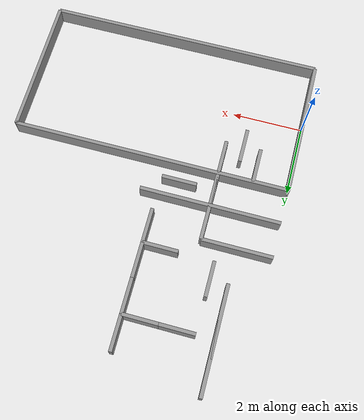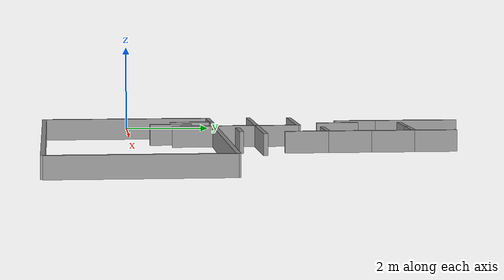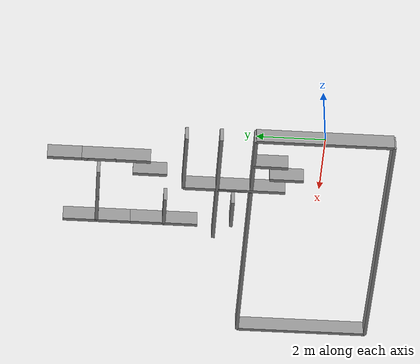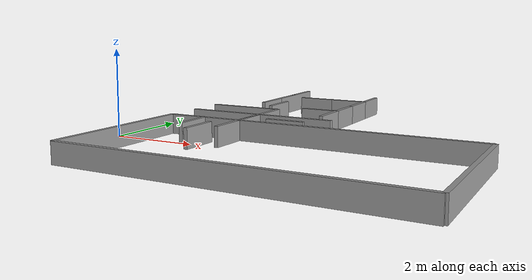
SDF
<?xml version='1.0'?>
<sdf version='1.7'>
  <model name='FirstWorld'>
    <pose>0 0 0 0 0 0</pose>
    <link name='LeftWall'>
      <collision name='LeftWall_Collision'>
        <geometry>
          <box>
            <size>4 0.1 0.5</size>
          </box>
        </geometry>
        <pose>0 0 0 0 -0 0</pose>
      </collision>
      <visual name='LeftWall_Visual'>
        <pose>0 0 0 0 -0 0</pose>
        <geometry>
          <box>
            <size>4 0.1 0.5</size>
          </box>
        </geometry>
        <material>
          <script>
            <uri>file://media/materials/scripts/gazebo.material</uri>
            <name>Gazebo/Grey</name>
          </script>
          <ambient>1 1 1 1</ambient>
        </material>
        <meta>
          <layer>0</layer>
        </meta>
      </visual>
      <pose>0 0 0 0 0 -1.5708</pose>
    </link>
    <link name='TopWall'>
      <collision name='TopWall_Collision'>
        <geometry>
          <box>
            <size>8 0.1 0.5</size>
          </box>
        </geometry>
        <pose>0 0 0 0 -0 0</pose>
      </collision>
      <visual name='TopWall_Visual'>
        <pose>0 0 0 0 -0 0</pose>
        <geometry>
          <box>
            <size>8 0.1 0.5</size>
          </box>
        </geometry>
        <material>
          <script>
            <uri>file://media/materials/scripts/gazebo.material</uri>
            <name>Gazebo/Grey</name>
          </script>
          <ambient>1 1 1 1</ambient>
        </material>
        <meta>
          <layer>0</layer>
        </meta>
      </visual>
      <pose>4 2 0 0 -0 0</pose>
    </link>
    <link name='RightWall'>
      <collision name='RightWall_Collision'>
        <geometry>
          <box>
            <size>4 0.1 0.5</size>
          </box>
        </geometry>
        <pose>0 0 0 0 -0 0</pose>
      </collision>
      <visual name='RightWall_Visual'>
        <pose>0 0 0 0 -0 0</pose>
        <geometry>
          <box>
            <size>4 0.1 0.5</size>
          </box>
        </geometry>
        <material>
          <script>
            <uri>file://media/materials/scripts/gazebo.material</uri>
            <name>Gazebo/Grey</name>
          </script>
          <ambient>1 1 1 1</ambient>
        </material>
        <meta>
          <layer>0</layer>
        </meta>
      </visual>
      <pose>8 0 0 0 -0 1.5708</pose>
    </link>
    <link name='BottomWall'>
      <collision name='BottomWall_Collision'>
        <geometry>
          <box>
            <size>8 0.1 0.5</size>
          </box>
        </geometry>
        <pose>0 0 0 0 -0 0</pose>
      </collision>
      <visual name='BottomWall_Visual'>
        <pose>0 0 0 0 -0 0</pose>
        <geometry>
          <box>
            <size>8 0.1 0.5</size>
          </box>
        </geometry>
        <material>
          <script>
            <uri>file://media/materials/scripts/gazebo.material</uri>
            <name>Gazebo/Grey</name>
          </script>
          <ambient>1 1 1 1</ambient>
        </material>
        <meta>
          <layer>0</layer>
        </meta>
      </visual>
      <pose> 4 -2 0 0 -0 0</pose>
    </link>
    <link name='Wall1'>
      <collision name='Wall1_Collision'>
        <geometry>
          <box>
            <size>1 0.1 0.5</size>
          </box>
        </geometry>
        <pose>0 0 0 0 -0 0</pose>
      </collision>
      <visual name='Wall1_Visual'>
        <pose>0 0 0 0 -0 0</pose>
        <geometry>
          <box>
            <size>1 0.1 0.5</size>
          </box>
        </geometry>
        <material>
          <script>
            <uri>file://media/materials/scripts/gazebo.material</uri>
            <name>Gazebo/Grey</name>
          </script>
          <ambient>1 1 1 1</ambient>
        </material>
        <meta>
          <layer>0</layer>
        </meta>
      </visual>
      <pose>3.5 4 0 0 -0 1.5708</pose>
    </link>
    <link name='Wall2'>
      <collision name='Wall2_Collision'>
        <geometry>
          <box>
            <size>1 0.1 0.5</size>
          </box>
        </geometry>
        <pose>0 0 0 0 -0 0</pose>
      </collision>
      <visual name='Wall2_Visual'>
        <pose>0 0 0 0 -0 0</pose>
        <geometry>
          <box>
            <size>1 0.1 0.5</size>
          </box>
        </geometry>
        <material>
          <script>
            <uri>file://media/materials/scripts/gazebo.material</uri>
            <name>Gazebo/Grey</name>
          </script>
          <ambient>1 1 1 1</ambient>
        </material>
        <meta>
          <layer>0</layer>
        </meta>
      </visual>
      <pose>3 4.5 0 0 -0 0</pose>
    </link>
    <link name='Wall3'>
      <collision name='Wall3_Collision'>
        <geometry>
          <box>
            <size>1 0.1 0.5</size>
          </box>
        </geometry>
        <pose>0 0 0 0 -0 0</pose>
      </collision>
      <visual name='Wall3_Visual'>
        <pose>0 0 0 0 -0 0</pose>
        <geometry>
          <box>
            <size>1 0.1 0.5</size>
          </box>
        </geometry>
        <material>
          <script>
            <uri>file://media/materials/scripts/gazebo.material</uri>
            <name>Gazebo/Grey</name>
          </script>
          <ambient>1 1 1 1</ambient>
        </material>
        <meta>
          <layer>0</layer>
        </meta>
      </visual>
      <pose>3.5 5 0 0 -0 1.5708</pose>
    </link>
    <link name='Wall4'>
      <collision name='Wall4_Collision'>
        <geometry>
          <box>
            <size>1 0.1 0.5</size>
          </box>
        </geometry>
        <pose>0 0 0 0 -0 0</pose>
      </collision>
      <visual name='Wall4_Visual'>
        <pose>0 0 0 0 -0 0</pose>
        <geometry>
          <box>
            <size>1 0.1 0.5</size>
          </box>
        </geometry>
        <material>
          <script>
            <uri>file://media/materials/scripts/gazebo.material</uri>
            <name>Gazebo/Grey</name>
          </script>
          <ambient>1 1 1 1</ambient>
        </material>
        <meta>
          <layer>0</layer>
        </meta>
      </visual>
      <pose>3.5 6 0 0 -0 1.5708</pose>
    </link>
    <link name='Wall5'>
      <collision name='Wall5_Collision'>
        <geometry>
          <box>
            <size>1 0.1 0.5</size>
          </box>
        </geometry>
        <pose>0 0 0 0 -0 0</pose>
      </collision>
      <visual name='Wall5_Visual'>
        <pose>0 0 0 0 -0 0</pose>
        <geometry>
          <box>
            <size>1 0.1 0.5</size>
          </box>
        </geometry>
        <material>
          <script>
            <uri>file://media/materials/scripts/gazebo.material</uri>
            <name>Gazebo/Grey</name>
          </script>
          <ambient>1 1 1 1</ambient>
        </material>
        <meta>
          <layer>0</layer>
        </meta>
      </visual>
      <pose>3 6.5 0 0 -0 0</pose>
    </link>
    <link name='Wall6'>
      <collision name='Wall6_Collision'>
        <geometry>
          <box>
            <size>1 0.1 0.5</size>
          </box>
        </geometry>
        <pose>0 0 0 0 -0 0</pose>
      </collision>
      <visual name='Wall6_Visual'>
        <pose>0 0 0 0 -0 0</pose>
        <geometry>
          <box>
            <size>1 0.1 0.5</size>
          </box>
        </geometry>
        <material>
          <script>
            <uri>file://media/materials/scripts/gazebo.material</uri>
            <name>Gazebo/Grey</name>
          </script>
          <ambient>1 1 1 1</ambient>
        </material>
        <meta>
          <layer>0</layer>
        </meta>
      </visual>
      <pose>3.5 7 0 0 -0 1.5708</pose>
    </link>
    <link name='Wall7'>
      <collision name='Wall7_Collision'>
        <geometry>
          <box>
            <size>1 0.1 0.5</size>
          </box>
        </geometry>
        <pose>0 0 0 0 -0 0</pose>
      </collision>
      <visual name='Wall7_Visual'>
        <pose>0 0 0 0 -0 0</pose>
        <geometry>
          <box>
            <size>1 0.1 0.5</size>
          </box>
        </geometry>
        <material>
          <script>
            <uri>file://media/materials/scripts/gazebo.material</uri>
            <name>Gazebo/Grey</name>
          </script>
          <ambient>1 1 1 1</ambient>
        </material>
        <meta>
          <layer>0</layer>
        </meta>
      </visual>
      <pose>1.5 1 0 0 -0 1.5708</pose>
    </link>
    <link name='Wall8'>
      <collision name='Wall8_Collision'>
        <geometry>
          <box>
            <size>4 0.1 0.5</size>
          </box>
        </geometry>
        <pose>0 0 0 0 -0 0</pose>
      </collision>
      <visual name='Wall8_Visual'>
        <pose>0 0 0 0 -0 0</pose>
        <geometry>
          <box>
            <size>4 0.1 0.5</size>
          </box>
        </geometry>
        <material>
          <script>
            <uri>file://media/materials/scripts/gazebo.material</uri>
            <name>Gazebo/Grey</name>
          </script>
          <ambient>1 1 1 1</ambient>
        </material>
        <meta>
          <layer>0</layer>
        </meta>
      </visual>
      <pose>2 3 0 0 -0 0</pose>
    </link>
    <link name='Wall9'>
      <collision name='Wall9_Collision'>
        <geometry>
          <box>
            <size>2 0.1 0.5</size>
          </box>
        </geometry>
        <pose>0 0 0 0 -0 0</pose>
      </collision>
      <visual name='Wall9_Visual'>
        <pose>0 0 0 0 -0 0</pose>
        <geometry>
          <box>
            <size>2 0.1 0.5</size>
          </box>
        </geometry>
        <material>
          <script>
            <uri>file://media/materials/scripts/gazebo.material</uri>
            <name>Gazebo/Grey</name>
          </script>
          <ambient>1 1 1 1</ambient>
        </material>
        <meta>
          <layer>0</layer>
        </meta>
      </visual>
      <pose>2 2 0 0 -0 1.5708</pose>
    </link>
    <link name='Wall10'>
      <collision name='Wall10_Collision'>
        <geometry>
          <box>
            <size>1 0.1 0.5</size>
          </box>
        </geometry>
        <pose>0 0 0 0 -0 0</pose>
      </collision>
      <visual name='Wall10_Visual'>
        <pose>0 0 0 0 -0 0</pose>
        <geometry>
          <box>
            <size>1 0.1 0.5</size>
          </box>
        </geometry>
        <material>
          <script>
            <uri>file://media/materials/scripts/gazebo.material</uri>
            <name>Gazebo/Grey</name>
          </script>
          <ambient>1 1 1 1</ambient>
        </material>
        <meta>
          <layer>0</layer>
        </meta>
      </visual>
      <pose>3 2.5 0 0 -0 0</pose>
    </link>
    <link name='Wall11'>
      <collision name='Wall11_Collision'>
        <geometry>
          <box>
            <size>2 0.1 0.5</size>
          </box>
        </geometry>
        <pose>0 0 0 0 -0 0</pose>
      </collision>
      <visual name='Wall11_Visual'>
        <pose>0 0 0 0 -0 0</pose>
        <geometry>
          <box>
            <size>2 0.1 0.5</size>
          </box>
        </geometry>
        <material>
          <script>
            <uri>file://media/materials/scripts/gazebo.material</uri>
            <name>Gazebo/Grey</name>
          </script>
          <ambient>1 1 1 1</ambient>
        </material>
        <meta>
          <layer>0</layer>
        </meta>
      </visual>
      <pose>2 3 0 0 -0 1.5708</pose>
    </link>
    <link name='Wall12'>
      <collision name='Wall12_Collision'>
        <geometry>
          <box>
            <size>1 0.1 0.5</size>
          </box>
        </geometry>
        <pose>0 0 0 0 -0 0</pose>
      </collision>
      <visual name='Wall12_Visual'>
        <pose>0 0 0 0 -0 0</pose>
        <geometry>
          <box>
            <size>1 0.1 0.5</size>
          </box>
        </geometry>
        <material>
          <script>
            <uri>file://media/materials/scripts/gazebo.material</uri>
            <name>Gazebo/Grey</name>
          </script>
          <ambient>1 1 1 1</ambient>
        </material>
        <meta>
          <layer>0</layer>
        </meta>
      </visual>
      <pose>1.5 5 0 0 -0 1.5708</pose>
    </link>
    <link name='Wall13'>
      <collision name='Wall13_Collision'>
        <geometry>
          <box>
            <size>2 0.1 0.5</size>
          </box>
        </geometry>
        <pose>0 0 0 0 -0 0</pose>
      </collision>
      <visual name='Wall13_Visual'>
        <pose>0 0 0 0 -0 0</pose>
        <geometry>
          <box>
            <size>2 0.1 0.5</size>
          </box>
        </geometry>
        <material>
          <script>
            <uri>file://media/materials/scripts/gazebo.material</uri>
            <name>Gazebo/Grey</name>
          </script>
          <ambient>1 1 1 1</ambient>
        </material>
        <meta>
          <layer>0</layer>
        </meta>
      </visual>
      <pose>1 4 0 0 -0 0</pose>
    </link>
    <link name='Wall14'>
      <collision name='Wall14_Collision'>
        <geometry>
          <box>
            <size>1 0.1 0.5</size>
          </box>
        </geometry>
        <pose>0 0 0 0 -0 0</pose>
      </collision>
      <visual name='Wall14_Visual'>
        <pose>0 0 0 0 -0 0</pose>
        <geometry>
          <box>
            <size>1 0.1 0.5</size>
          </box>
        </geometry>
        <material>
          <script>
            <uri>file://media/materials/scripts/gazebo.material</uri>
            <name>Gazebo/Grey</name>
          </script>
          <ambient>1 1 1 1</ambient>
        </material>
        <meta>
          <layer>0</layer>
        </meta>
      </visual>
      <pose>1 1.5 0 0 -0 1.5708</pose>
    </link>
    <link name='Wall15'>
      <collision name='Wall15_Collision'>
        <geometry>
          <box>
            <size>2 0.1 0.5</size>
          </box>
        </geometry>
        <pose>0 0 0 0 -0 0</pose>
      </collision>
      <visual name='Wall15_Visual'>
        <pose>0 0 0 0 -0 0</pose>
        <geometry>
          <box>
            <size>2 0.1 0.5</size>
          </box>
        </geometry>
        <material>
          <script>
            <uri>file://media/materials/scripts/gazebo.material</uri>
            <name>Gazebo/Grey</name>
          </script>
          <ambient>1 1 1 1</ambient>
        </material>
        <meta>
          <layer>0</layer>
        </meta>
      </visual>
      <pose>1 6 0 0 -0 1.5708</pose>
    </link>
    <link name='Wall16'>
      <collision name='Wall16_Collision'>
        <geometry>
          <box>
            <size>1 0.1 0.5</size>
          </box>
        </geometry>
        <pose>0 0 0 0 -0 0</pose>
      </collision>
      <visual name='Wall16_Visual'>
        <pose>0 0 0 0 -0 0</pose>
        <geometry>
          <box>
            <size>1 0.1 0.5</size>
          </box>
        </geometry>
        <material>
          <script>
            <uri>file://media/materials/scripts/gazebo.material</uri>
            <name>Gazebo/Grey</name>
          </script>
          <ambient>1 1 1 1</ambient>
        </material>
        <meta>
          <layer>0</layer>
        </meta>
      </visual>
      <pose>2 6.5 0 0 -0 0</pose>
    </link>
    <link name='Wall17'>
      <collision name='Wall17_Collision'>
        <geometry>
          <box>
            <size>2 0.1 0.5</size>
          </box>
        </geometry>
        <pose>0 0 0 0 -0 0</pose>
      </collision>
      <visual name='Wall17_Visual'>
        <pose>0 0 0 0 -0 0</pose>
        <geometry>
          <box>
            <size>2 0.1 0.5</size>
          </box>
        </geometry>
        <material>
          <script>
            <uri>file://media/materials/scripts/gazebo.material</uri>
            <name>Gazebo/Grey</name>
          </script>
          <ambient>1 1 1 1</ambient>
        </material>
        <meta>
          <layer>0</layer>
        </meta>
      </visual>
      <pose>1 7 0 0 -0 1.5708</pose>
    </link>
    <static>1</static>
  </model>
</sdf>
